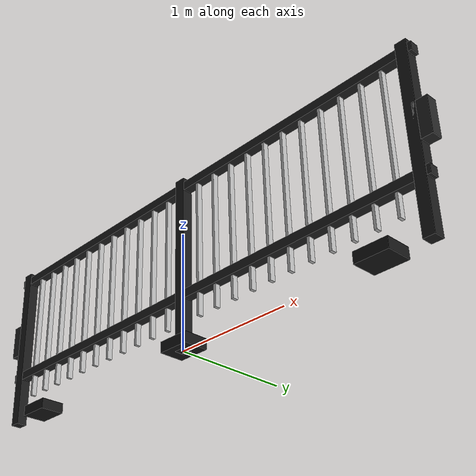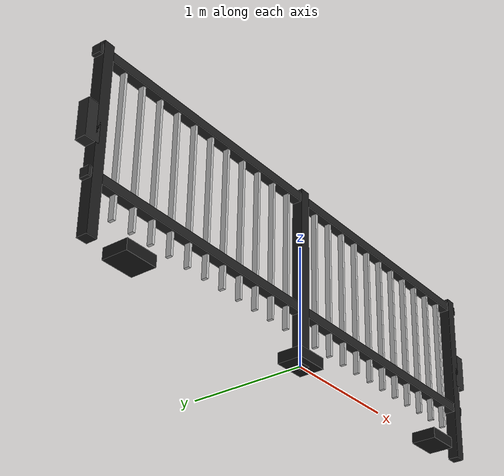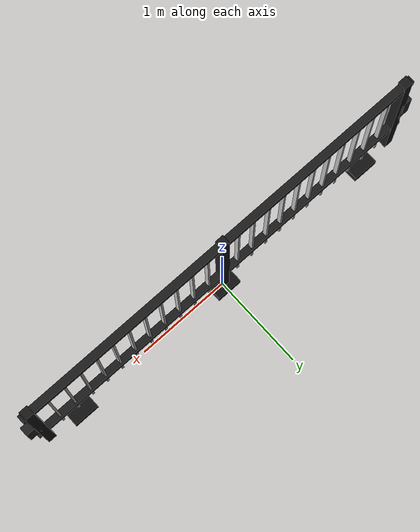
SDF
<?xml version="1.0"?>
<sdf version="1.7">
  <model name="guardrail_panel_x1p5">
    <static>true</static>

    <link name="guardrail_link">
      <pose>0 0 0 0 0 0</pose>

      <!-- ==========================
           Collision (lightweight)
           ========================== -->

      <!-- Top rail collision -->
      <collision name="col_top_rail">
        <pose>0 0 1.425 0 0 0</pose>
        <geometry>
          <box><size>4.50 0.075 0.075</size></box>
        </geometry>
        <surface>
          <friction>
            <ode>
              <mu>1.2</mu>
              <mu2>1.2</mu2>
            </ode>
          </friction>
          <contact>
            <ode>
              <kp>1000000</kp>
              <kd>10</kd>
            </ode>
          </contact>
        </surface>
      </collision>

      <!-- Bottom rail collision -->
      <collision name="col_bottom_rail">
        <pose>0 0 0.45 0 0 0</pose>
        <geometry>
          <box><size>4.50 0.075 0.075</size></box>
        </geometry>
      </collision>

      <!-- Posts collision (3 posts: left/mid/right) -->
      <collision name="col_post_left">
        <pose>-2.175 0 0.75 0 0 0</pose>
        <geometry>
          <box><size>0.09 0.09 1.50</size></box>
        </geometry>
      </collision>

      <collision name="col_post_mid">
        <pose>0 0 0.75 0 0 0</pose>
        <geometry>
          <box><size>0.09 0.09 1.50</size></box>
        </geometry>
      </collision>

      <collision name="col_post_right">
        <pose>2.175 0 0.75 0 0 0</pose>
        <geometry>
          <box><size>0.09 0.09 1.50</size></box>
        </geometry>
      </collision>

      <!-- Feet collision (scaled pads) -->
      <collision name="col_foot_left">
        <pose>-1.80 0 0.045 0 0 0</pose>
        <geometry>
          <box><size>0.27 0.21 0.09</size></box>
        </geometry>
      </collision>

      <collision name="col_foot_mid">
        <pose>0.00 0 0.045 0 0 0</pose>
        <geometry>
          <box><size>0.27 0.21 0.09</size></box>
        </geometry>
      </collision>

      <collision name="col_foot_right">
        <pose>1.80 0 0.045 0 0 0</pose>
        <geometry>
          <box><size>0.27 0.21 0.09</size></box>
        </geometry>
      </collision>

      <!-- ==========================
           Visual (detailed)
           ========================== -->

      <visual name="vis_top_rail">
        <pose>0 0 1.425 0 0 0</pose>
        <geometry><box><size>4.50 0.075 0.075</size></box></geometry>
        <material>
          <ambient>0.06 0.06 0.06 1</ambient>
          <diffuse>0.12 0.12 0.12 1</diffuse>
          <specular>0.20 0.20 0.20 1</specular>
          <emissive>0 0 0 1</emissive>
        </material>
      </visual>

      <visual name="vis_bottom_rail">
        <pose>0 0 0.45 0 0 0</pose>
        <geometry><box><size>4.50 0.075 0.075</size></box></geometry>
        <material>
          <ambient>0.06 0.06 0.06 1</ambient>
          <diffuse>0.12 0.12 0.12 1</diffuse>
          <specular>0.20 0.20 0.20 1</specular>
        </material>
      </visual>

      <visual name="vis_post_left">
        <pose>-2.175 0 0.75 0 0 0</pose>
        <geometry><box><size>0.09 0.09 1.50</size></box></geometry>
        <material>
          <ambient>0.05 0.05 0.05 1</ambient>
          <diffuse>0.10 0.10 0.10 1</diffuse>
        </material>
      </visual>

      <visual name="vis_post_mid">
        <pose>0 0 0.75 0 0 0</pose>
        <geometry><box><size>0.09 0.09 1.50</size></box></geometry>
        <material>
          <ambient>0.05 0.05 0.05 1</ambient>
          <diffuse>0.10 0.10 0.10 1</diffuse>
        </material>
      </visual>

      <visual name="vis_post_right">
        <pose>2.175 0 0.75 0 0 0</pose>
        <geometry><box><size>0.09 0.09 1.50</size></box></geometry>
        <material>
          <ambient>0.05 0.05 0.05 1</ambient>
          <diffuse>0.10 0.10 0.10 1</diffuse>
        </material>
      </visual>

      <visual name="vis_foot_left">
        <pose>-1.80 0 0.045 0 0 0</pose>
        <geometry><box><size>0.27 0.21 0.09</size></box></geometry>
        <material>
          <ambient>0.04 0.04 0.04 1</ambient>
          <diffuse>0.08 0.08 0.08 1</diffuse>
        </material>
      </visual>

      <visual name="vis_foot_mid">
        <pose>0.00 0 0.045 0 0 0</pose>
        <geometry><box><size>0.27 0.21 0.09</size></box></geometry>
        <material>
          <ambient>0.04 0.04 0.04 1</ambient>
          <diffuse>0.08 0.08 0.08 1</diffuse>
        </material>
      </visual>

      <visual name="vis_foot_right">
        <pose>1.80 0 0.045 0 0 0</pose>
        <geometry><box><size>0.27 0.21 0.09</size></box></geometry>
        <material>
          <ambient>0.04 0.04 0.04 1</ambient>
          <diffuse>0.08 0.08 0.08 1</diffuse>
        </material>
      </visual>

      <!-- Bars: size scaled -> 0.0225 x 0.045 x 1.20 -->
      <!-- Center Z: 0.55 -> 0.825 ; height: 0.80 -> 1.20 -->

      <visual name="vis_bar_01"><pose>-1.98 0 0.825 0 0 0</pose><geometry><box><size>0.0225 0.045 1.20</size></box></geometry></visual>
      <visual name="vis_bar_02"><pose>-1.80 0 0.825 0 0 0</pose><geometry><box><size>0.0225 0.045 1.20</size></box></geometry></visual>
      <visual name="vis_bar_03"><pose>-1.62 0 0.825 0 0 0</pose><geometry><box><size>0.0225 0.045 1.20</size></box></geometry></visual>
      <visual name="vis_bar_04"><pose>-1.44 0 0.825 0 0 0</pose><geometry><box><size>0.0225 0.045 1.20</size></box></geometry></visual>
      <visual name="vis_bar_05"><pose>-1.26 0 0.825 0 0 0</pose><geometry><box><size>0.0225 0.045 1.20</size></box></geometry></visual>
      <visual name="vis_bar_06"><pose>-1.08 0 0.825 0 0 0</pose><geometry><box><size>0.0225 0.045 1.20</size></box></geometry></visual>
      <visual name="vis_bar_07"><pose>-0.90 0 0.825 0 0 0</pose><geometry><box><size>0.0225 0.045 1.20</size></box></geometry></visual>
      <visual name="vis_bar_08"><pose>-0.72 0 0.825 0 0 0</pose><geometry><box><size>0.0225 0.045 1.20</size></box></geometry></visual>
      <visual name="vis_bar_09"><pose>-0.54 0 0.825 0 0 0</pose><geometry><box><size>0.0225 0.045 1.20</size></box></geometry></visual>
      <visual name="vis_bar_10"><pose>-0.36 0 0.825 0 0 0</pose><geometry><box><size>0.0225 0.045 1.20</size></box></geometry></visual>
      <visual name="vis_bar_11"><pose>-0.18 0 0.825 0 0 0</pose><geometry><box><size>0.0225 0.045 1.20</size></box></geometry></visual>
      <visual name="vis_bar_12"><pose>0.00 0 0.825 0 0 0</pose><geometry><box><size>0.0225 0.045 1.20</size></box></geometry></visual>
      <visual name="vis_bar_13"><pose>0.18 0 0.825 0 0 0</pose><geometry><box><size>0.0225 0.045 1.20</size></box></geometry></visual>
      <visual name="vis_bar_14"><pose>0.36 0 0.825 0 0 0</pose><geometry><box><size>0.0225 0.045 1.20</size></box></geometry></visual>
      <visual name="vis_bar_15"><pose>0.54 0 0.825 0 0 0</pose><geometry><box><size>0.0225 0.045 1.20</size></box></geometry></visual>
      <visual name="vis_bar_16"><pose>0.72 0 0.825 0 0 0</pose><geometry><box><size>0.0225 0.045 1.20</size></box></geometry></visual>
      <visual name="vis_bar_17"><pose>0.90 0 0.825 0 0 0</pose><geometry><box><size>0.0225 0.045 1.20</size></box></geometry></visual>
      <visual name="vis_bar_18"><pose>1.08 0 0.825 0 0 0</pose><geometry><box><size>0.0225 0.045 1.20</size></box></geometry></visual>
      <visual name="vis_bar_19"><pose>1.26 0 0.825 0 0 0</pose><geometry><box><size>0.0225 0.045 1.20</size></box></geometry></visual>
      <visual name="vis_bar_20"><pose>1.44 0 0.825 0 0 0</pose><geometry><box><size>0.0225 0.045 1.20</size></box></geometry></visual>
      <visual name="vis_bar_21"><pose>1.62 0 0.825 0 0 0</pose><geometry><box><size>0.0225 0.045 1.20</size></box></geometry></visual>
      <visual name="vis_bar_22"><pose>1.80 0 0.825 0 0 0</pose><geometry><box><size>0.0225 0.045 1.20</size></box></geometry></visual>
      <visual name="vis_bar_23"><pose>1.98 0 0.825 0 0 0</pose><geometry><box><size>0.0225 0.045 1.20</size></box></geometry></visual>

      <!-- End joints (scaled) -->
      <visual name="vis_joint_left">
        <pose>-2.25 0 0.825 0 0 0</pose>
        <geometry><box><size>0.12 0.09 0.30</size></box></geometry>
        <material><diffuse>0.14 0.14 0.14 1</diffuse></material>
      </visual>

      <visual name="vis_joint_right">
        <pose>2.25 0 0.825 0 0 0</pose>
        <geometry><box><size>0.12 0.09 0.30</size></box></geometry>
        <material><diffuse>0.14 0.14 0.14 1</diffuse></material>
      </visual>

      <self_collide>false</self_collide>
      <enable_wind>false</enable_wind>
      <kinematic>false</kinematic>
    </link>
  </model>
</sdf>
